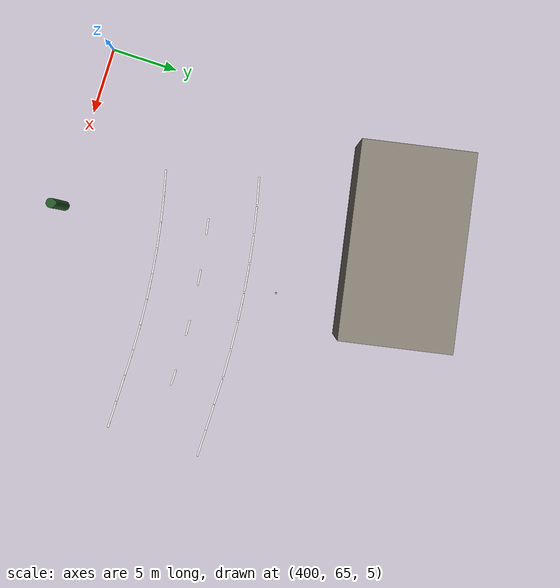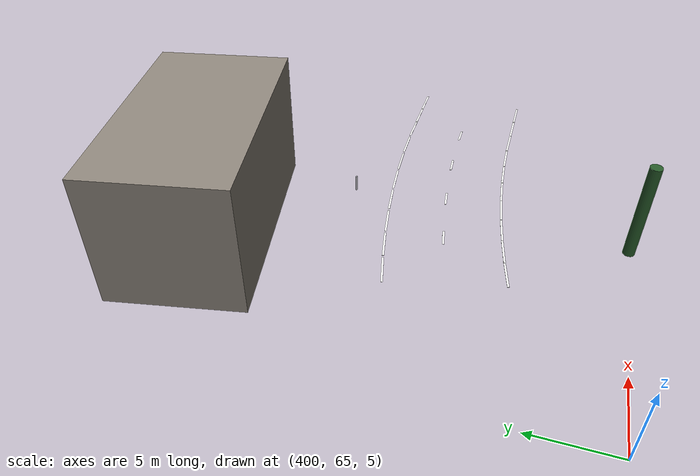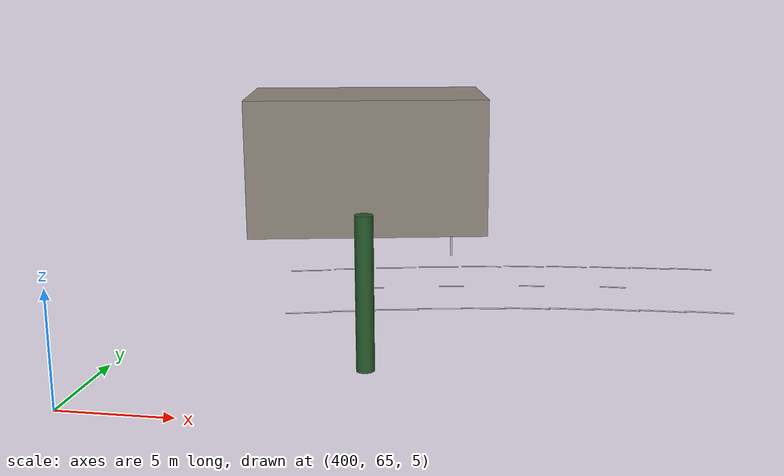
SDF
<sdf version="1.4">
 <world name="marathon_course">
  <include><uri>model://sun</uri></include>
  <model name="paint_left_edge_210">
   <static>true</static>
   <pose>406.92121056423343 78.85812523011072 7.1228361510675935 0 0 0.2349481685376982</pose>
   <link name="link">
    <visual name="visual">
     <geometry><box><size>2.05 0.12 0.02</size></box></geometry>
     <material><ambient>0.95 0.95 0.95 1</ambient><diffuse>0.95 0.95 0.95 1</diffuse></material>
    </visual>
   </link>
  </model>
  <model name="paint_left_edge_211">
   <static>true</static>
   <pose>409.05924978328767 79.33211711349634 7.160155764455261 0 0 0.20138414446088418</pose>
   <link name="link">
    <visual name="visual">
     <geometry><box><size>2.05 0.12 0.02</size></box></geometry>
     <material><ambient>0.95 0.95 0.95 1</ambient><diffuse>0.95 0.95 0.95 1</diffuse></material>
    </visual>
   </link>
  </model>
  <model name="paint_left_edge_212">
   <static>true</static>
   <pose>411.2119909061859 79.73409430876104 7.197732000529094 0 0 0.16782012038407013</pose>
   <link name="link">
    <visual name="visual">
     <geometry><box><size>2.05 0.12 0.02</size></box></geometry>
     <material><ambient>0.95 0.95 0.95 1</ambient><diffuse>0.95 0.95 0.95 1</diffuse></material>
    </visual>
   </link>
  </model>
  <model name="paint_left_edge_213">
   <static>true</static>
   <pose>413.3770090036138 80.06360401353389 7.235522531990464 0 0 0.1342560963072561</pose>
   <link name="link">
    <visual name="visual">
     <geometry><box><size>2.05 0.12 0.02</size></box></geometry>
     <material><ambient>0.95 0.95 0.95 1</ambient><diffuse>0.95 0.95 0.95 1</diffuse></material>
    </visual>
   </link>
  </model>
  <model name="paint_left_edge_214">
   <static>true</static>
   <pose>415.5518653170071 80.320275055576 7.273484790150288 0 0 0.10069207223044208</pose>
   <link name="link">
    <visual name="visual">
     <geometry><box><size>2.05 0.12 0.02</size></box></geometry>
     <material><ambient>0.95 0.95 0.95 1</ambient><diffuse>0.95 0.95 0.95 1</diffuse></material>
    </visual>
   </link>
  </model>
  <model name="paint_left_edge_215">
   <static>true</static>
   <pose>417.7341100056617 80.5038183108829 7.311576012880012 0 0 0.06712804815362805</pose>
   <link name="link">
    <visual name="visual">
     <geometry><box><size>2.05 0.12 0.02</size></box></geometry>
     <material><ambient>0.95 0.95 0.95 1</ambient><diffuse>0.95 0.95 0.95 1</diffuse></material>
    </visual>
   </link>
  </model>
  <model name="paint_left_edge_216">
   <static>true</static>
   <pose>419.921284906327 80.61402702936496 7.349753292780493 0 0 0.033564024076814025</pose>
   <link name="link">
    <visual name="visual">
     <geometry><box><size>2.05 0.12 0.02</size></box></geometry>
     <material><ambient>0.95 0.95 0.95 1</ambient><diffuse>0.95 0.95 0.95 1</diffuse></material>
    </visual>
   </link>
  </model>
  <model name="paint_left_edge_217">
   <static>true</static>
   <pose>422.1109263021746 80.65077706773837 7.387973625514526 0 0 0.0</pose>
   <link name="link">
    <visual name="visual">
     <geometry><box><size>2.05 0.12 0.02</size></box></geometry>
     <material><ambient>0.95 0.95 0.95 1</ambient><diffuse>0.95 0.95 0.95 1</diffuse></material>
    </visual>
   </link>
  </model>
  <model name="paint_left_edge_218">
   <static>true</static>
   <pose>424.1109263021746 80.65077706773837 7.422883755370961 0 0 0.0</pose>
   <link name="link">
    <visual name="visual">
     <geometry><box><size>2.05 0.12 0.02</size></box></geometry>
     <material><ambient>0.95 0.95 0.95 1</ambient><diffuse>0.95 0.95 0.95 1</diffuse></material>
    </visual>
   </link>
  </model>
  <model name="paint_left_edge_219">
   <static>true</static>
   <pose>426.1109263021746 80.65077706773837 7.457793885227396 0 0 0.0</pose>
   <link name="link">
    <visual name="visual">
     <geometry><box><size>2.05 0.12 0.02</size></box></geometry>
     <material><ambient>0.95 0.95 0.95 1</ambient><diffuse>0.95 0.95 0.95 1</diffuse></material>
    </visual>
   </link>
  </model>
  <model name="paint_right_edge_210">
   <static>true</static>
   <pose>408.5507586127482 72.0504403697796 7.15128001805807 0 0 0.2349481685376982</pose>
   <link name="link">
    <visual name="visual">
     <geometry><box><size>2.05 0.12 0.02</size></box></geometry>
     <material><ambient>0.95 0.95 0.95 1</ambient><diffuse>0.95 0.95 0.95 1</diffuse></material>
    </visual>
   </link>
  </model>
  <model name="paint_right_edge_211">
   <static>true</static>
   <pose>410.45942963972 72.47358254920046 7.184595994760469 0 0 0.20138414446088418</pose>
   <link name="link">
    <visual name="visual">
     <geometry><box><size>2.05 0.12 0.02</size></box></geometry>
     <material><ambient>0.95 0.95 0.95 1</ambient><diffuse>0.95 0.95 0.95 1</diffuse></material>
    </visual>
   </link>
  </model>
  <model name="paint_right_edge_212">
   <static>true</static>
   <pose>412.3812253547977 72.83243575416857 7.218141063745922 0 0 0.16782012038407013</pose>
   <link name="link">
    <visual name="visual">
     <geometry><box><size>2.05 0.12 0.02</size></box></geometry>
     <material><ambient>0.95 0.95 0.95 1</ambient><diffuse>0.95 0.95 0.95 1</diffuse></material>
    </visual>
   </link>
  </model>
  <model name="paint_right_edge_213">
   <static>true</static>
   <pose>414.3139809743406 73.12659575881253 7.25187743857542 0 0 0.1342560963072561</pose>
   <link name="link">
    <visual name="visual">
     <geometry><box><size>2.05 0.12 0.02</size></box></geometry>
     <material><ambient>0.95 0.95 0.95 1</ambient><diffuse>0.95 0.95 0.95 1</diffuse></material>
    </visual>
   </link>
  </model>
  <model name="paint_right_edge_214">
   <static>true</static>
   <pose>416.2555193690558 73.35573121013748 7.2857671173158005 0 0 0.10069207223044208</pose>
   <link name="link">
    <visual name="visual">
     <geometry><box><size>2.05 0.12 0.02</size></box></geometry>
     <material><ambient>0.95 0.95 0.95 1</ambient><diffuse>0.95 0.95 0.95 1</diffuse></material>
    </visual>
   </link>
  </model>
  <model name="paint_right_edge_215">
   <static>true</static>
   <pose>418.2036535163987 73.51958400127354 7.319771925346549 0 0 0.06712804815362805</pose>
   <link name="link">
    <visual name="visual">
     <geometry><box><size>2.05 0.12 0.02</size></box></geometry>
     <material><ambient>0.95 0.95 0.95 1</ambient><diffuse>0.95 0.95 0.95 1</diffuse></material>
    </visual>
   </link>
  </model>
  <model name="paint_right_edge_216">
   <static>true</static>
   <pose>420.1561889641191 73.61796956221728 7.3538535583611555 0 0 0.033564024076814025</pose>
   <link name="link">
    <visual name="visual">
     <geometry><box><size>2.05 0.12 0.02</size></box></geometry>
     <material><ambient>0.95 0.95 0.95 1</ambient><diffuse>0.95 0.95 0.95 1</diffuse></material>
    </visual>
   </link>
  </model>
  <model name="paint_right_edge_217">
   <static>true</static>
   <pose>422.1109263021746 73.65077706773837 7.387973625514526 0 0 0.0</pose>
   <link name="link">
    <visual name="visual">
     <geometry><box><size>2.05 0.12 0.02</size></box></geometry>
     <material><ambient>0.95 0.95 0.95 1</ambient><diffuse>0.95 0.95 0.95 1</diffuse></material>
    </visual>
   </link>
  </model>
  <model name="paint_right_edge_218">
   <static>true</static>
   <pose>424.1109263021746 73.65077706773837 7.422883755370961 0 0 0.0</pose>
   <link name="link">
    <visual name="visual">
     <geometry><box><size>2.05 0.12 0.02</size></box></geometry>
     <material><ambient>0.95 0.95 0.95 1</ambient><diffuse>0.95 0.95 0.95 1</diffuse></material>
    </visual>
   </link>
  </model>
  <model name="paint_right_edge_219">
   <static>true</static>
   <pose>426.1109263021746 73.65077706773837 7.457793885227396 0 0 0.0</pose>
   <link name="link">
    <visual name="visual">
     <geometry><box><size>2.05 0.12 0.02</size></box></geometry>
     <material><ambient>0.95 0.95 0.95 1</ambient><diffuse>0.95 0.95 0.95 1</diffuse></material>
    </visual>
   </link>
  </model>
  <model name="paint_divider_115">
   <static>true</static>
   <pose>410.6308845598646 76.07425678989392 7.187588751523856 0 0 0.18699956271367818</pose>
   <link name="link">
    <visual name="visual">
     <geometry><box><size>1.2 0.12 0.02</size></box></geometry>
     <material><ambient>0.95 0.95 0.95 1</ambient><diffuse>0.95 0.95 0.95 1</diffuse></material>
    </visual>
   </link>
  </model>
  <model name="paint_divider_116">
   <static>true</static>
   <pose>414.4327025401924 76.671548075299 7.253949731215743 0 0 0.1246663751424521</pose>
   <link name="link">
    <visual name="visual">
     <geometry><box><size>1.2 0.12 0.02</size></box></geometry>
     <material><ambient>0.95 0.95 0.95 1</ambient><diffuse>0.95 0.95 0.95 1</diffuse></material>
    </visual>
   </link>
  </model>
  <model name="paint_divider_117">
   <static>true</static>
   <pose>418.264344034555 77.0308533686682 7.320831282281494 0 0 0.06233318757122608</pose>
   <link name="link">
    <visual name="visual">
     <geometry><box><size>1.2 0.12 0.02</size></box></geometry>
     <material><ambient>0.95 0.95 0.95 1</ambient><diffuse>0.95 0.95 0.95 1</diffuse></material>
    </visual>
   </link>
  </model>
  <model name="paint_divider_118">
   <static>true</static>
   <pose>422.1109263021746 77.15077706773837 7.387973625514526 0 0 0.0</pose>
   <link name="link">
    <visual name="visual">
     <geometry><box><size>1.2 0.12 0.02</size></box></geometry>
     <material><ambient>0.95 0.95 0.95 1</ambient><diffuse>0.95 0.95 0.95 1</diffuse></material>
    </visual>
   </link>
  </model>
  <model name="building_10">
   <static>true</static>
   <pose>407.7117687235027 90.02228125872593 11.11663539506717 0 0 0.19061977873044111</pose>
   <link name="link">
    <collision name="collision"><geometry><box><size>14.0 8.0 8.0</size></box></geometry></collision>
    <visual name="visual">
     <geometry><box><size>14.0 8.0 8.0</size></box></geometry>
     <material><ambient>0.55 0.52 0.48 1</ambient><diffuse>0.55 0.52 0.48 1</diffuse></material>
    </visual>
   </link>
  </model>
  <model name="tree_10">
   <static>true</static>
   <pose>412.44845582357493 65.4751063639237 10.199314575943582 0 0 0.19061977873044111</pose>
   <link name="link">
    <collision name="collision">
     <geometry><cylinder><radius>0.35</radius><length>6.0</length></cylinder></geometry>
    </collision>
    <visual name="visual">
     <geometry><cylinder><radius>0.35</radius><length>6.0</length></cylinder></geometry>
     <material><ambient>0.15 0.35 0.16 1</ambient><diffuse>0.15 0.35 0.16 1</diffuse></material>
    </visual>
   </link>
  </model>
  <model name="barrier_26">
   <static>true</static>
   <pose>413.75343897983316 82.48014552159542 7.747093141666301 0 0 0.12395232973532548</pose>
   <link name="link">
    <collision name="collision">
     <geometry><cylinder><radius>0.06</radius><length>1.05</length></cylinder></geometry>
    </collision>
    <visual name="visual">
     <geometry><cylinder><radius>0.06</radius><length>1.05</length></cylinder></geometry>
     <material><ambient>0.75 0.75 0.78 1</ambient><diffuse>0.75 0.75 0.78 1</diffuse></material>
    </visual>
   </link>
  </model>
 </world>
</sdf>
